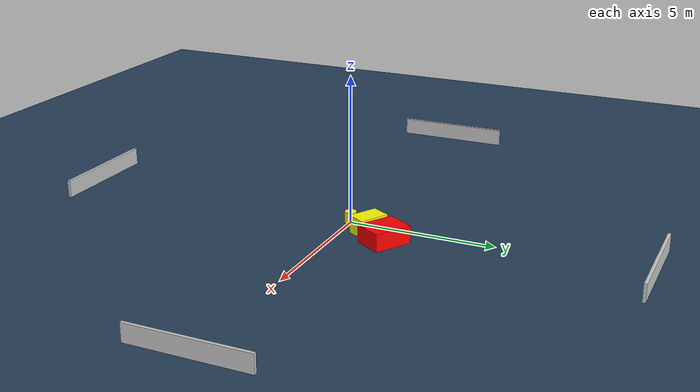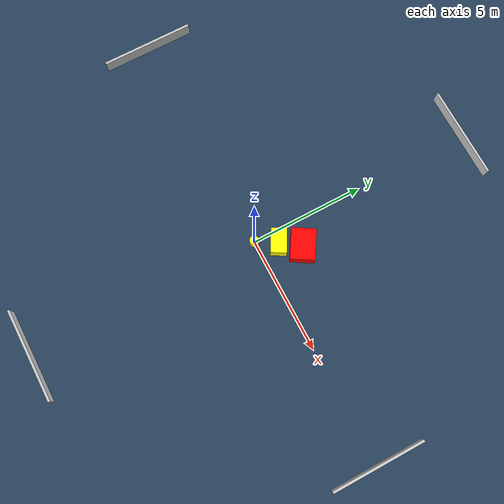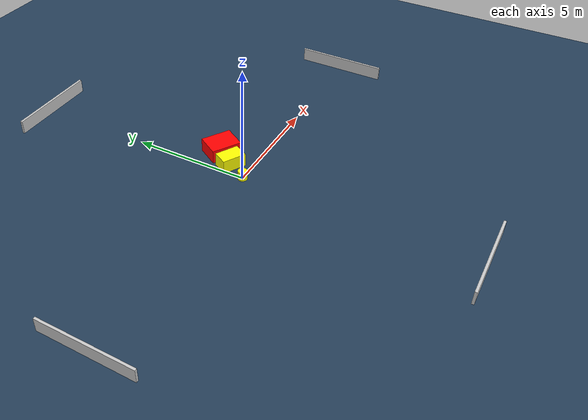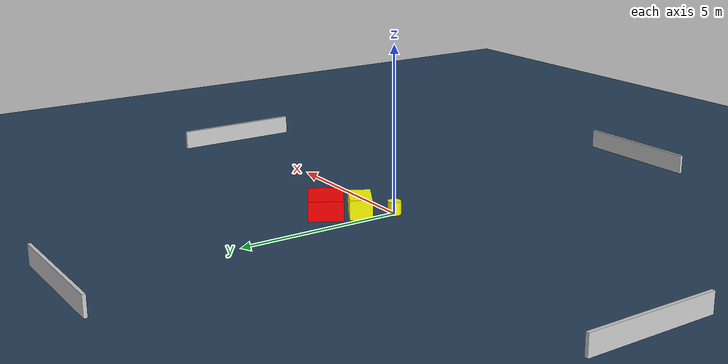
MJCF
<?xml version="1.0" ?>
<mujoco model="generated_environment">
  <option timestep="0.01" integrator="RK4" cone="elliptic"/>
  <default>
    <geom density="1"/>
  </default>
  <asset>
    <texture builtin="gradient" height="3072" name="skybox" rgb1="0.3 0.5 0.7" rgb2="0 0 0" type="skybox" width="512"/>
    <texture builtin="checker" height="300" name="groundplane" rgb1="0.2 0.3 0.4" rgb2="0.1 0.2 0.3" type="2d" width="300"/>
    <material name="groundplane" reflectance="0.2" texrepeat="5 5" texture="groundplane"/>
  </asset>
  <worldbody>
    <light dir="0 0 -1" directional="true" pos="0 0 1.5"/>
    <geom condim="3" friction="0.5 0.005 0.001" material="groundplane" name="floor" pos="0 0 0" size="0 0 0.05" type="plane"/>
    <body name="walls">
      <geom name="wall_1" condim="4" pos="-10.0 0.0 0.3" rgba="0.800000011920929 0.800000011920929 0.800000011920929 1.0" size="0.05 2.0 0.3" type="box"/>
      <geom name="wall_2" condim="4" pos="10.0 0.0 0.3" rgba="0.800000011920929 0.800000011920929 0.800000011920929 1.0" size="0.05 2.0 0.3" type="box"/>
      <geom name="wall_3" condim="4" pos="0.0 -10.0 0.3" rgba="0.800000011920929 0.800000011920929 0.800000011920929 1.0" size="2.0 0.05 0.3" type="box"/>
      <geom name="wall_4" condim="4" pos="0.0 10.0 0.3" rgba="0.800000011920929 0.800000011920929 0.800000011920929 1.0" size="2.0 0.05 0.3" type="box"/>
    </body>
    <body name="robot">
      <joint name="joint_x" type="slide" pos="0 0 0" axis="1 0 0"/>
      <joint name="joint_y" type="slide" pos="0 0 0" axis="0 1 0"/>
      <geom name="robot" type="cylinder" pos="0.0 0.0 0.2" size="0.2 0.2 0.0" mass="5.0" friction="1.0 0.005 0.0001" condim="4" rgba="1.0 1.0 0.0 1.0"/>
    </body>
    <body name="obstacle_1_movable">
      <geom name="obstacle_1_movable" condim="4" pos="0.5102949541394366 0.8627986174204509 0.3" euler="0 0 150.65315434454385" friction="0.0 0.005 0.001" rgba="1.0 1.0 0.0 1.0" size="0.5216583160190096 0.3332512648340582 0.3" type="box" mass="0.1"/>
      <joint type="free"/>
    </body>
    <body name="obstacle_2_static">
      <geom name="obstacle_2_static" condim="4" pos="1.106635007670445 1.6646621555881669 0.3" euler="0 0 328.4687604367811" friction="0.0 0.005 0.001" rgba="1.0 0.0 0.0 1.0" size="0.6627607256142741 0.5196104242945077 0.3" type="box"/>
    </body>
  </worldbody>
  <actuator>
    <motor name="actuator_x" joint="joint_x" gear="1" ctrlrange="-1 1"/>
    <motor name="actuator_y" joint="joint_y" gear="1" ctrlrange="-1 1"/>
  </actuator>
</mujoco>
